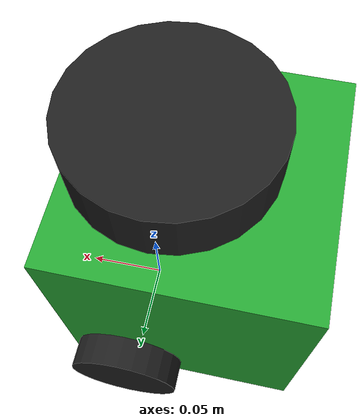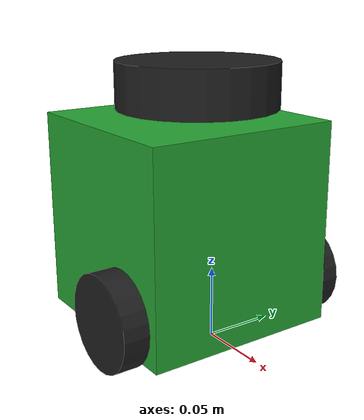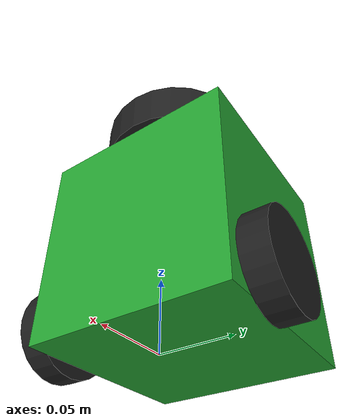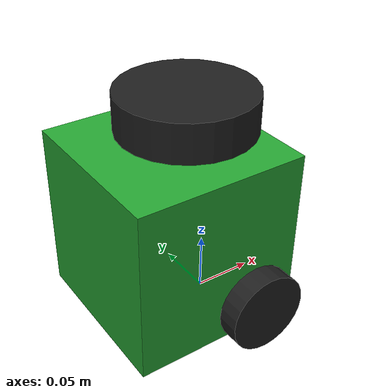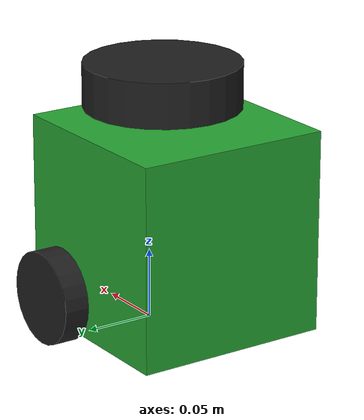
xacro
<?xml version="1.0" ?>

<robot name="turtlebot3_burger" xmlns:xacro="http://ros.org/wiki/xacro">
  <xacro:include filename="$(find rdl_turtlebot3_description)/urdf/common_properties.xacro"/>
  <xacro:include filename="$(find rdl_turtlebot3_description)/urdf/turtlebot3_simplified_burger.gazebo.xacro"/>

  <link name="base_footprint"/>

  <joint name="base_joint" type="fixed">
    <parent link="base_footprint"/>
    <child link="base_link"/>
    <origin xyz="0.0 0.0 0.010" rpy="0 0 0"/>
  </joint>

  <!--
    The link element describes a rigid body with an inertia, visual features, and collision properties.
    see https://wiki.ros.org/urdf/XML/link
  -->
  <link name="base_link">
    <inertial> <!-- for physics -->
      <origin xyz="0 0 0" rpy="0 0 0"/>
      <mass value="8.2573504e-01"/>
      <inertia ixx="2.2124416e-03" ixy="-1.2294101e-05" ixz="3.4938785e-05"
               iyy="2.1193702e-03" iyz="-5.0120904e-06"
               izz="2.0064271e-03" />
    </inertial>

    <visual>
      <origin xyz="-0.032 0 0.070" rpy="0 0 0"/>
      <geometry>
        <box size="0.140 0.140 0.143"/>
      </geometry>
      <material name="green"/>
    </visual>

    <collision>
      <origin xyz="-0.032 0 0.070" rpy="0 0 0"/>
      <geometry> <!-- bounding box -->
        <box size="0.140 0.140 0.143"/>
      </geometry>
    </collision>

  </link>

  <joint name="wheel_left_joint" type="continuous">
    <parent link="base_link"/>
    <child link="wheel_left_link"/>
    <origin xyz="0.0 0.08 0.023" rpy="-1.57 0 0"/>
    <axis xyz="0 0 1"/>
  </joint>

  <link name="wheel_left_link">
    <visual>
      <origin xyz="0 0 0" rpy="0 0 0"/>
      <geometry>
        <cylinder length="0.018" radius="0.033"/>
      </geometry>
      <material name="dark"/>
    </visual>

    <collision>
      <origin xyz="0 0 0" rpy="0 0 0"/>
      <geometry>
        <cylinder length="0.018" radius="0.033"/>
      </geometry>
    </collision>

    <inertial>
      <origin xyz="0 0 0" />
      <mass value="2.8498940e-02" />
      <inertia ixx="1.1175580e-05" ixy="-4.2369783e-11" ixz="-5.9381719e-09"
               iyy="1.1192413e-05" iyz="-1.4400107e-11"
               izz="2.0712558e-05" />
      </inertial>
  </link>

  <joint name="wheel_right_joint" type="continuous">
    <parent link="base_link"/>
    <child link="wheel_right_link"/>
    <origin xyz="0.0 -0.080 0.023" rpy="-1.57 0 0"/>
    <axis xyz="0 0 1"/>
  </joint>

  <link name="wheel_right_link">
    <visual>
      <origin xyz="0 0 0" rpy="0 0 0"/>
      <geometry>
        <cylinder length="0.018" radius="0.033"/>
      </geometry>
      <material name="dark"/>
    </visual>

    <collision>
      <origin xyz="0 0 0" rpy="0 0 0"/>
      <geometry>
        <cylinder length="0.018" radius="0.033"/>
      </geometry>
    </collision>

    <inertial>
      <origin xyz="0 0 0" />
      <mass value="2.8498940e-02" />
      <inertia ixx="1.1175580e-05" ixy="-4.2369783e-11" ixz="-5.9381719e-09"
               iyy="1.1192413e-05" iyz="-1.4400107e-11"
               izz="2.0712558e-05" />
      </inertial>
  </link>

  <joint name="caster_back_joint" type="fixed">
    <parent link="base_link"/>
    <child link="caster_back_link"/>
    <origin xyz="-0.081 0 -0.004" rpy="-1.57 0 0"/>
  </joint>

  <!-- tag required by ros control for individual joint control -->
  <transmission name="wheel_left_tran">
    <type>transmission_interface/SimpleTransmission</type>
    <joint name="wheel_left_joint">
      <hardwareInterface>hardware_interface/EffortJointInterface</hardwareInterface>
    </joint>
    <actuator name="wheel_left">
      <hardwareInterface>hardware_interface/EffortJointInterface</hardwareInterface>
      <mechanicalReduction>1</mechanicalReduction>
    </actuator>
  </transmission>

  <!-- tag required by ros control for individual joint control -->
  <transmission name="wheel_right_tran">
    <type>transmission_interface/SimpleTransmission</type>
    <joint name="wheel_right_joint">
      <hardwareInterface>hardware_interface/EffortJointInterface</hardwareInterface>
    </joint>
    <actuator name="wheel_right">
      <hardwareInterface>hardware_interface/EffortJointInterface</hardwareInterface>
      <mechanicalReduction>1</mechanicalReduction>
    </actuator>
  </transmission>

  <link name="caster_back_link">
    <collision>
      <origin xyz="0 0.001 0" rpy="0 0 0"/>
      <geometry>
        <box size="0.030 0.009 0.020"/>
      </geometry>
    </collision>

    <inertial>
      <origin xyz="0 0 0" />
      <mass value="0.005" />
      <inertia ixx="0.001" ixy="0.0" ixz="0.0"
               iyy="0.001" iyz="0.0"
               izz="0.001" />
    </inertial>
  </link>

  <!-- laser scanner -->
  <joint name="scan_joint" type="fixed">
    <parent link="base_link"/>
    <child link="base_scan"/>
    <origin xyz="-0.032 0 0.172" rpy="0 0 0"/>
  </joint>

  <link name="base_scan">
    <visual>
      <origin xyz="0.015 0 -0.0065" rpy="0 0 0"/>
      <geometry>
        <cylinder length="0.0315" radius="0.055"/>
      </geometry>
      <material name="dark"/>
    </visual>

    <collision>
      <origin xyz="0.015 0 -0.0065" rpy="0 0 0"/>
      <geometry>
        <cylinder length="0.0315" radius="0.055"/>
      </geometry>
    </collision>

    <inertial>
      <mass value="0.114" />
      <origin xyz="0 0 0" />
      <inertia ixx="0.001" ixy="0.0" ixz="0.0"
               iyy="0.001" iyz="0.0"
               izz="0.001" />
    </inertial>
  </link>

  <!-- camera -->
  <joint name="camera_joint" type="fixed">
    <origin xyz="0.040 -0.011 0.130" rpy="0 0.174 0"/>
    <parent link="base_link"/>
    <child link="camera_link"/>
  </joint>

  <link name="camera_link">
    <collision>
      <origin xyz="0.005 0.011 0.013" rpy="0 0 0"/>
      <geometry>
        <box size="0.015 0.030 0.027"/>
      </geometry>
    </collision>
  </link>

  <joint name="camera_rgb_joint" type="fixed">
    <origin xyz="0.003 0.011 0.009" rpy="0 0 0"/>
    <parent link="camera_link"/>
    <child link="camera_rgb_frame"/>
  </joint>
  <link name="camera_rgb_frame"/>

  <joint name="camera_rgb_optical_joint" type="fixed">
    <origin xyz="0 0 0" rpy="-1.57 0 -1.57"/>
    <parent link="camera_rgb_frame"/>
    <child link="camera_rgb_optical_frame"/>
  </joint>
  <link name="camera_rgb_optical_frame"/>

</robot>
